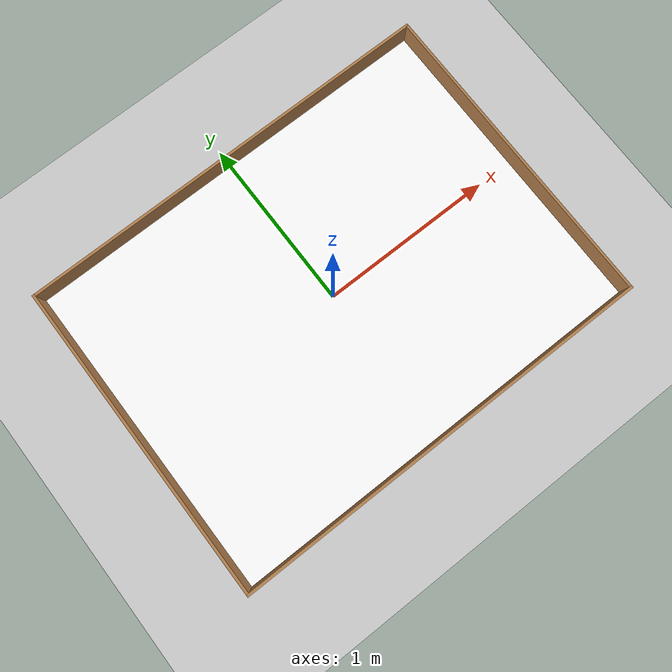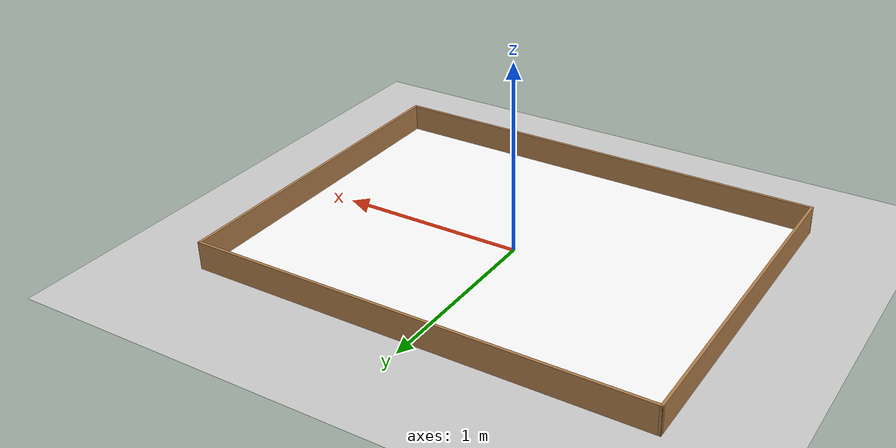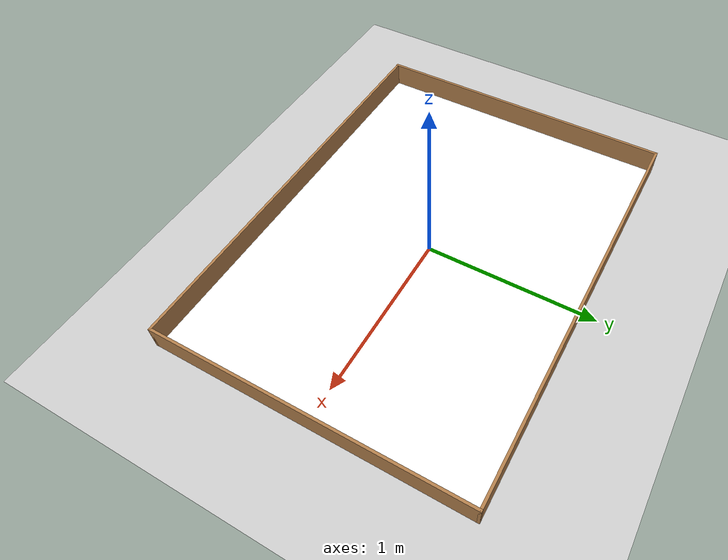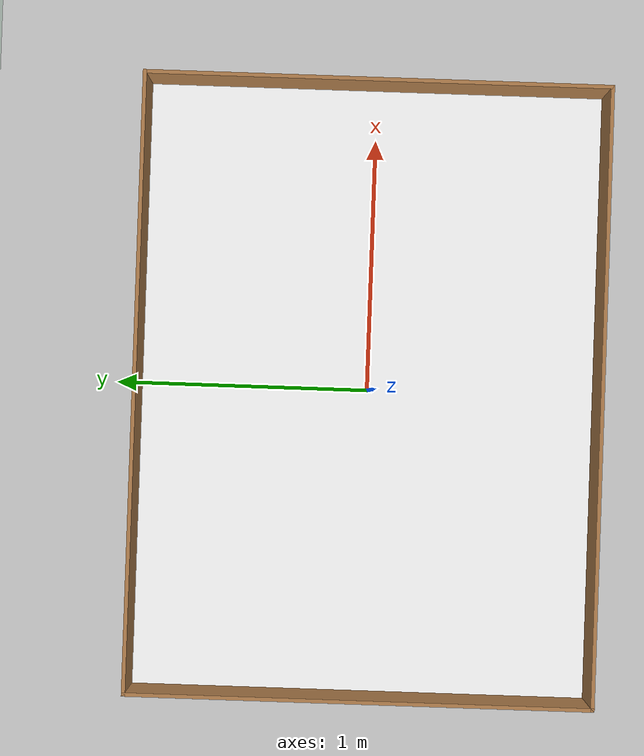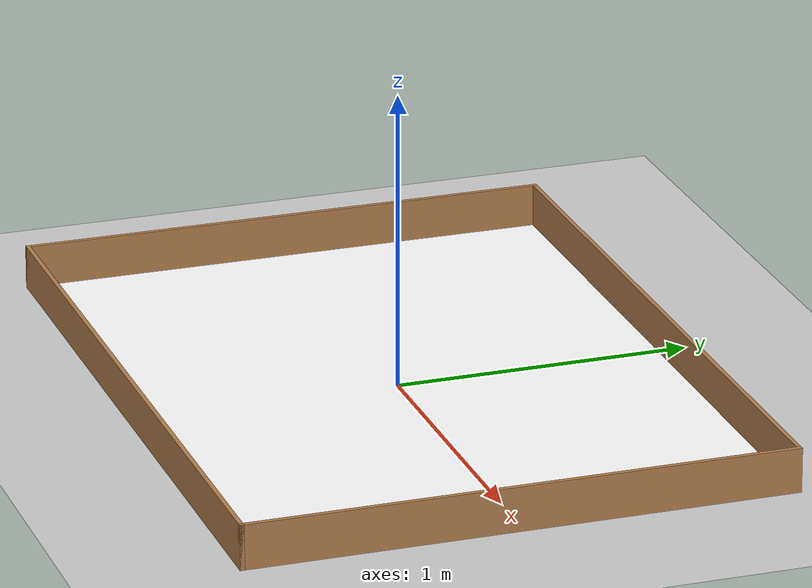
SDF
<?xml version="1.0"?>
<sdf version="1.5">
  <world name="default">
    <gui fullscreen='0'>
      <camera name='user_default'>
        <pose frame=''>0.021617 -1.69486 2.50032 0 1.024 1.56218</pose>
        <view_controller>orbit</view_controller>
        <projection_type>perspective</projection_type>
      </camera>
    </gui>

    <include>
      <uri>model://ground_plane</uri>
    </include>

    <include>
      <uri>model://sun</uri>
    </include>

    <light name='user_directional_light_0' type='directional'>
      <pose frame=''>0.0 0.0 10.0 0 -0 0</pose>
      <diffuse>1 1 1 1</diffuse>
      <specular>0.1 0.1 0.1 1</specular>
      <direction>0.1 0.1 -0.9</direction>
      <attenuation>
        <range>100</range>
        <constant>0</constant>
        <linear>0</linear>
        <quadratic>0</quadratic>
      </attenuation>
      <cast_shadows>1</cast_shadows>
    </light>

    <model name='Object0'>
      <plugin name='Move_Object0' filename='libchange_object_pose.so'>
        <robotNamespace>Object0</robotNamespace>
        <topicName>pose</topicName>
      </plugin>
      <pose frame=''>0 0 0 0 0 0</pose>
      <link name='Wall'>
        <collision name='Collision'>
          <geometry>
            <box>
              <size>0.3 0.3 0.001</size>
            </box>
          </geometry>
        </collision>
        <visual name='Visual'>
          <geometry>
            <box>
              <size>0.3 0.3 0.001</size>
            </box>
          </geometry>
          <material>
            <script>
              <uri>file://media/materials/scripts/gazebo.material</uri>
              <name>Gazebo/Wood</name>
            </script>
            <ambient>1 1 1 1</ambient>
          </material>
        </visual>
      </link>
    </model>
    <joint name='Object0_joint' type='fixed'>
      <parent>TheFloor</parent>
      <child>Object0</child>
      <pose frame=''>0 0 0 0 -0 0</pose>
      <physics>
        <ode>
          <limit>
            <cfm>0</cfm>
            <erp>0.2</erp>
          </limit>
          <suspension>
            <cfm>0</cfm>
            <erp>0.2</erp>
          </suspension>
        </ode>
      </physics>
    </joint>

    <model name='TheWall'>
      <pose frame=''>0 0 0 0 0 0</pose>
      <link name='Wall'>
        <collision name='Wall_0_Collision'>
          <pose frame=''>0 0.9075 0.075 0 0 0</pose>
          <geometry>
            <box>
              <size>2.43 0.015 0.15</size>
            </box>
          </geometry>
        </collision>
        <visual name='Wall_0_Visual'>
          <pose frame=''>0 0.9075 0.075 0 0 0</pose>
          <geometry>
            <box>
              <size>2.43 0.015 0.15</size>
            </box>
          </geometry>
          <material>
            <script>
              <uri>file://media/materials/scripts/gazebo.material</uri>
              <name>Gazebo/Wood</name>
            </script>
            <ambient>1 1 1 1</ambient>
          </material>
        </visual>

        <collision name='Wall_1_Collision'>
          <pose frame=''>0 -0.9075 0.075 0 0 0</pose>
          <geometry>
            <box>
              <size>2.43 0.015 0.15</size>
            </box>
          </geometry>
        </collision>
        <visual name='Wall_1_Visual'>
          <pose frame=''>0 -0.9075 0.075 0 0 0</pose>
          <geometry>
            <box>
              <size>2.43 0.015 0.15</size>
            </box>
          </geometry>
          <material>
            <script>
              <uri>file://media/materials/scripts/gazebo.material</uri>
              <name>Gazebo/Wood</name>
            </script>
            <ambient>1 1 1 1</ambient>
          </material>
        </visual>

        <collision name='Wall_2_Collision'>
          <pose frame=''>1.2075 0.0 0.075 0 0 0</pose>
          <geometry>
            <box>
              <size>0.015 1.830 0.15</size>
            </box>
          </geometry>
        </collision>
        <visual name='Wall_2_Visual'>
          <pose frame=''>1.2075 0.0 0.075 0 0 0</pose>
          <geometry>
            <box>
              <size>0.015 1.830 0.15</size>
            </box>
          </geometry>
          <material>
            <script>
              <uri>file://media/materials/scripts/gazebo.material</uri>
              <name>Gazebo/Wood</name>
            </script>
            <ambient>1 1 1 1</ambient>
          </material>
        </visual>

        <collision name='Wall_3_Collision'>
          <pose frame=''>-1.2075 0.0 0.075 0 0 0</pose>
            <geometry>
            <box>
              <size>0.015 1.830 0.15</size>
            </box>
          </geometry>
        </collision>
        <visual name='Wall_3_Visual'>
          <pose frame=''>-1.2075 0.0 0.075 0 0 0</pose>
          <geometry>
            <box>
              <size>0.015 1.830 0.15</size>
            </box>
          </geometry>
          <material>
            <script>
              <uri>file://media/materials/scripts/gazebo.material</uri>
              <name>Gazebo/Wood</name>
            </script>
            <ambient>1 1 1 1</ambient>
          </material>
        </visual>
      </link>

      <link name='TheFloor'>
        <pose frame=''>0 0 0 0 0 0</pose>
        <collision name='Collision'>
          <geometry>
            <box>
              <size>2.400 1.800 0.01</size>
            </box>
          </geometry>
        </collision>
        <visual name='Visual'>
          <geometry>
            <box>
              <size>2.400 1.800 0.01</size>
            </box>
          </geometry>
          <material>
            <script>
              <uri>file://media/materials/scripts/csrobot_ros.material</uri>
              <name>Gazebo/cospace-map1</name>
            </script>
            <ambient>1 1 1 1</ambient>
          </material>
        </visual>
      </link>

      <static>1</static>
    </model>
  </world>
</sdf>
